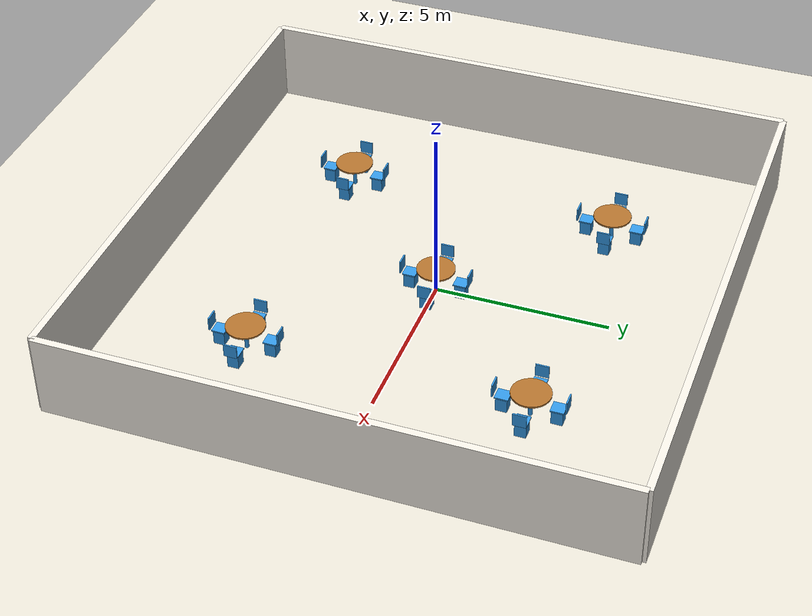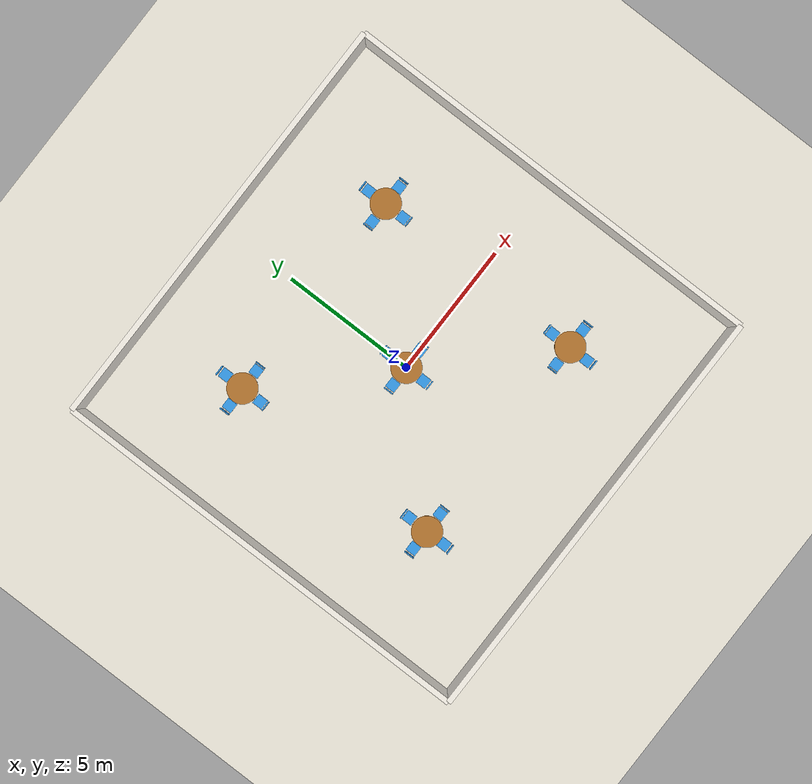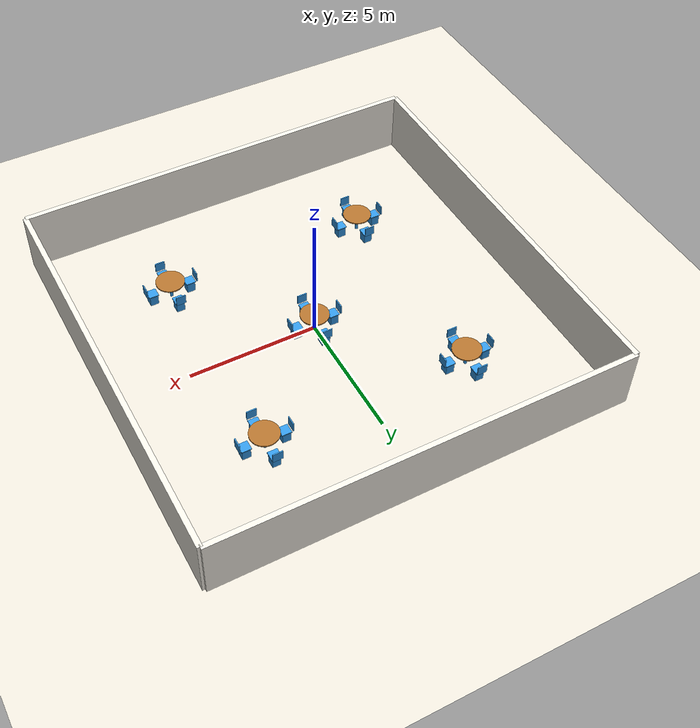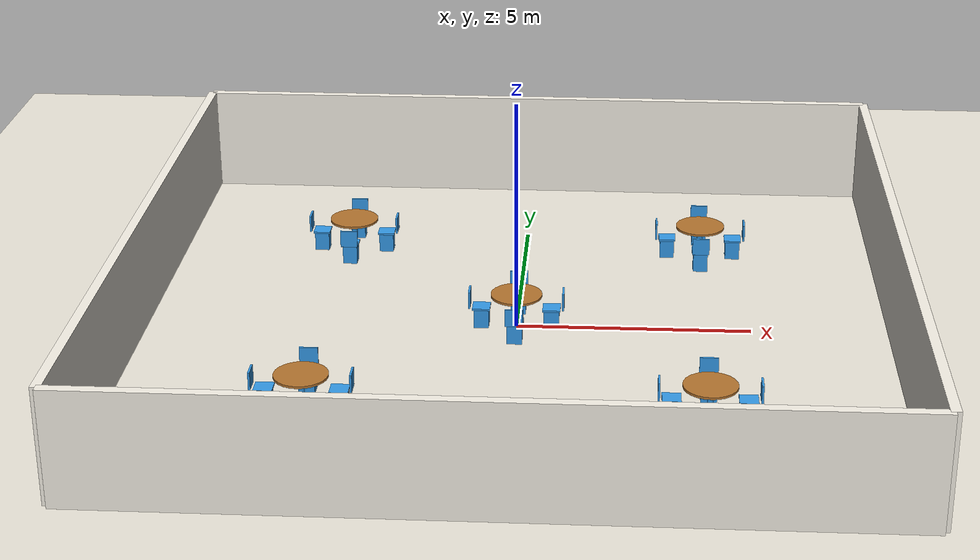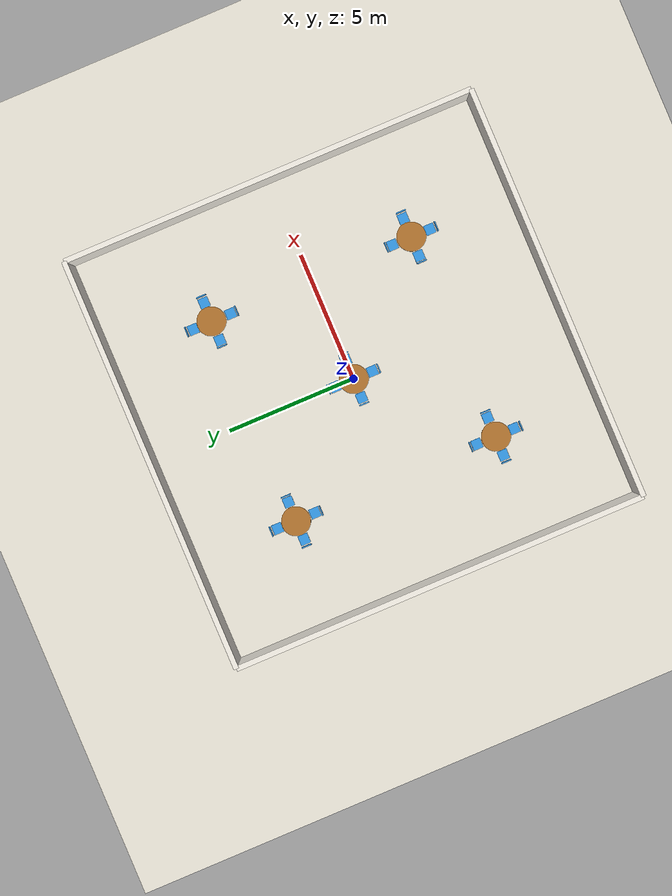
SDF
<sdf version="1.6">
 <world name="cafe">
  <physics name="1ms" type="ignored">
   <max_step_size>0.001</max_step_size>
   <real_time_factor>1.0</real_time_factor>
  </physics>
  <plugin filename="ignition-gazebo-physics-system" name="gz::sim::systems::Physics"/>
  <plugin filename="ignition-gazebo-user-commands-system" name="gz::sim::systems::UserCommands"/>
  <plugin filename="ignition-gazebo-scene-broadcaster-system" name="gz::sim::systems::SceneBroadcaster"/>
  <plugin filename="ignition-gazebo-sensors-system" name="gz::sim::systems::Sensors">
   <render_engine>ogre2</render_engine>
  </plugin>
  <plugin filename="ignition-gazebo-contact-system" name="gz::sim::systems::Contact"/>
  <light type="directional" name="sun">
   <pose>0 0 10 0 0 0</pose>
   <diffuse>1.0 1.0 1.0 1</diffuse>
   <specular>0.3 0.3 0.3 1</specular>
   <attenuation>
    <range>1000</range>
    <constant>0.9</constant>
    <linear>0.01</linear>
    <quadratic>0.001</quadratic>
   </attenuation>
   <direction>-0.5 0.1 -0.9</direction>
  </light>
  <model name="ground_plane">
   <static>true</static>
   <link name="link">
    <collision name="collision">
     <geometry><plane><normal>0 0 1</normal><size>100 100</size></plane></geometry>
    </collision>
    <visual name="visual">
     <geometry><plane><normal>0 0 1</normal><size>100 100</size></plane></geometry>
     <material><ambient>0.92 0.90 0.85 1</ambient><diffuse>0.92 0.90 0.85 1</diffuse></material>
    </visual>
   </link>
  </model>
  <model name="wall_north">
   <static>true</static>
   <pose>0 8 1.2 0 0 0</pose>
   <link name="link">
    <collision name="c"><geometry><box><size>16 0.2 2.4</size></box></geometry></collision>
    <visual name="v">
     <geometry><box><size>16 0.2 2.4</size></box></geometry>
     <material><ambient>0.96 0.94 0.90 1</ambient></material>
    </visual>
   </link>
  </model>
  <model name="wall_south">
   <static>true</static>
   <pose>0 -8 1.2 0 0 0</pose>
   <link name="link">
    <collision name="c"><geometry><box><size>16 0.2 2.4</size></box></geometry></collision>
    <visual name="v">
     <geometry><box><size>16 0.2 2.4</size></box></geometry>
     <material><ambient>0.96 0.94 0.90 1</ambient></material>
    </visual>
   </link>
  </model>
  <model name="wall_east">
   <static>true</static>
   <pose>8 0 1.2 0 0 0</pose>
   <link name="link">
    <collision name="c"><geometry><box><size>0.2 16 2.4</size></box></geometry></collision>
    <visual name="v">
     <geometry><box><size>0.2 16 2.4</size></box></geometry>
     <material><ambient>0.96 0.94 0.90 1</ambient></material>
    </visual>
   </link>
  </model>
  <model name="wall_west">
   <static>true</static>
   <pose>-8 0 1.2 0 0 0</pose>
   <link name="link">
    <collision name="c"><geometry><box><size>0.2 16 2.4</size></box></geometry></collision>
    <visual name="v">
     <geometry><box><size>0.2 16 2.4</size></box></geometry>
     <material><ambient>0.96 0.94 0.90 1</ambient></material>
    </visual>
   </link>
  </model>
  <model name="table_1_top">
   <static>true</static>
   <pose>4 4 0.73 0 0 0</pose>
   <link name="link">
    <collision name="c">
     <geometry><cylinder><radius>0.55</radius><length>0.05</length></cylinder></geometry>
    </collision>
    <visual name="v">
     <geometry><cylinder><radius>0.55</radius><length>0.05</length></cylinder></geometry>
     <material><ambient>0.70 0.45 0.18 1</ambient><diffuse>0.70 0.45 0.18 1</diffuse></material>
    </visual>
   </link>
  </model>
  <model name="table_1_leg">
   <static>true</static>
   <pose>4 4 0.36 0 0 0</pose>
   <link name="link">
    <collision name="c">
     <geometry><cylinder><radius>0.06</radius><length>0.72</length></cylinder></geometry>
    </collision>
    <visual name="v">
     <geometry><cylinder><radius>0.06</radius><length>0.72</length></cylinder></geometry>
     <material><ambient>0.20 0.60 0.90 1</ambient><diffuse>0.20 0.60 0.90 1</diffuse></material>
    </visual>
   </link>
  </model>
  <model name="chair_1_1_seat">
   <static>true</static>
   <pose>4 4.75 0.44 0 0 0</pose>
   <link name="link">
    <collision name="c"><geometry><box><size>0.38 0.38 0.04</size></box></geometry></collision>
    <visual name="v">
     <geometry><box><size>0.38 0.38 0.04</size></box></geometry>
     <material><ambient>0.20 0.60 0.90 1</ambient><diffuse>0.20 0.60 0.90 1</diffuse></material>
    </visual>
   </link>
  </model>
  <model name="chair_1_1_legs">
   <static>true</static>
   <pose>4 4.75 0.22 0 0 0</pose>
   <link name="link">
    <collision name="c"><geometry><box><size>0.32 0.32 0.44</size></box></geometry></collision>
    <visual name="v">
     <geometry><box><size>0.32 0.32 0.44</size></box></geometry>
     <material><ambient>0.20 0.60 0.90 1</ambient><diffuse>0.20 0.60 0.90 1</diffuse></material>
    </visual>
   </link>
  </model>
  <model name="chair_1_1_back">
   <static>true</static>
   <pose>4 5.0 0.65 0 0 0</pose>
   <link name="link">
    <collision name="c"><geometry><box><size>0.38 0.04 0.38</size></box></geometry></collision>
    <visual name="v">
     <geometry><box><size>0.38 0.04 0.38</size></box></geometry>
     <material><ambient>0.20 0.60 0.90 1</ambient><diffuse>0.20 0.60 0.90 1</diffuse></material>
    </visual>
   </link>
  </model>
  <model name="chair_1_2_seat">
   <static>true</static>
   <pose>4 3.25 0.44 0 0 0</pose>
   <link name="link">
    <collision name="c"><geometry><box><size>0.38 0.38 0.04</size></box></geometry></collision>
    <visual name="v">
     <geometry><box><size>0.38 0.38 0.04</size></box></geometry>
     <material><ambient>0.20 0.60 0.90 1</ambient><diffuse>0.20 0.60 0.90 1</diffuse></material>
    </visual>
   </link>
  </model>
  <model name="chair_1_2_legs">
   <static>true</static>
   <pose>4 3.25 0.22 0 0 0</pose>
   <link name="link">
    <collision name="c"><geometry><box><size>0.32 0.32 0.44</size></box></geometry></collision>
    <visual name="v">
     <geometry><box><size>0.32 0.32 0.44</size></box></geometry>
     <material><ambient>0.20 0.60 0.90 1</ambient><diffuse>0.20 0.60 0.90 1</diffuse></material>
    </visual>
   </link>
  </model>
  <model name="chair_1_2_back">
   <static>true</static>
   <pose>4 3.0 0.65 0 0 0</pose>
   <link name="link">
    <collision name="c"><geometry><box><size>0.38 0.04 0.38</size></box></geometry></collision>
    <visual name="v">
     <geometry><box><size>0.38 0.04 0.38</size></box></geometry>
     <material><ambient>0.20 0.60 0.90 1</ambient><diffuse>0.20 0.60 0.90 1</diffuse></material>
    </visual>
   </link>
  </model>
  <model name="chair_1_3_seat">
   <static>true</static>
   <pose>4.75 4 0.44 0 0 0</pose>
   <link name="link">
    <collision name="c"><geometry><box><size>0.38 0.38 0.04</size></box></geometry></collision>
    <visual name="v">
     <geometry><box><size>0.38 0.38 0.04</size></box></geometry>
     <material><ambient>0.20 0.60 0.90 1</ambient><diffuse>0.20 0.60 0.90 1</diffuse></material>
    </visual>
   </link>
  </model>
  <model name="chair_1_3_legs">
   <static>true</static>
   <pose>4.75 4 0.22 0 0 0</pose>
   <link name="link">
    <collision name="c"><geometry><box><size>0.32 0.32 0.44</size></box></geometry></collision>
    <visual name="v">
     <geometry><box><size>0.32 0.32 0.44</size></box></geometry>
     <material><ambient>0.20 0.60 0.90 1</ambient><diffuse>0.20 0.60 0.90 1</diffuse></material>
    </visual>
   </link>
  </model>
  <model name="chair_1_3_back">
   <static>true</static>
   <pose>5.0 4 0.65 0 0 0</pose>
   <link name="link">
    <collision name="c"><geometry><box><size>0.04 0.38 0.38</size></box></geometry></collision>
    <visual name="v">
     <geometry><box><size>0.04 0.38 0.38</size></box></geometry>
     <material><ambient>0.20 0.60 0.90 1</ambient><diffuse>0.20 0.60 0.90 1</diffuse></material>
    </visual>
   </link>
  </model>
  <model name="chair_1_4_seat">
   <static>true</static>
   <pose>3.25 4 0.44 0 0 0</pose>
   <link name="link">
    <collision name="c"><geometry><box><size>0.38 0.38 0.04</size></box></geometry></collision>
    <visual name="v">
     <geometry><box><size>0.38 0.38 0.04</size></box></geometry>
     <material><ambient>0.20 0.60 0.90 1</ambient><diffuse>0.20 0.60 0.90 1</diffuse></material>
    </visual>
   </link>
  </model>
  <model name="chair_1_4_legs">
   <static>true</static>
   <pose>3.25 4 0.22 0 0 0</pose>
   <link name="link">
    <collision name="c"><geometry><box><size>0.32 0.32 0.44</size></box></geometry></collision>
    <visual name="v">
     <geometry><box><size>0.32 0.32 0.44</size></box></geometry>
     <material><ambient>0.20 0.60 0.90 1</ambient><diffuse>0.20 0.60 0.90 1</diffuse></material>
    </visual>
   </link>
  </model>
  <model name="chair_1_4_back">
   <static>true</static>
   <pose>3.0 4 0.65 0 0 0</pose>
   <link name="link">
    <collision name="c"><geometry><box><size>0.04 0.38 0.38</size></box></geometry></collision>
    <visual name="v">
     <geometry><box><size>0.04 0.38 0.38</size></box></geometry>
     <material><ambient>0.20 0.60 0.90 1</ambient><diffuse>0.20 0.60 0.90 1</diffuse></material>
    </visual>
   </link>
  </model>
  <model name="table_2_top">
   <static>true</static>
   <pose>-4 4 0.73 0 0 0</pose>
   <link name="link">
    <collision name="c">
     <geometry><cylinder><radius>0.55</radius><length>0.05</length></cylinder></geometry>
    </collision>
    <visual name="v">
     <geometry><cylinder><radius>0.55</radius><length>0.05</length></cylinder></geometry>
     <material><ambient>0.70 0.45 0.18 1</ambient><diffuse>0.70 0.45 0.18 1</diffuse></material>
    </visual>
   </link>
  </model>
  <model name="table_2_leg">
   <static>true</static>
   <pose>-4 4 0.36 0 0 0</pose>
   <link name="link">
    <collision name="c">
     <geometry><cylinder><radius>0.06</radius><length>0.72</length></cylinder></geometry>
    </collision>
    <visual name="v">
     <geometry><cylinder><radius>0.06</radius><length>0.72</length></cylinder></geometry>
     <material><ambient>0.20 0.60 0.90 1</ambient><diffuse>0.20 0.60 0.90 1</diffuse></material>
    </visual>
   </link>
  </model>
  <model name="chair_2_1_seat">
   <static>true</static>
   <pose>-4 4.75 0.44 0 0 0</pose>
   <link name="link">
    <collision name="c"><geometry><box><size>0.38 0.38 0.04</size></box></geometry></collision>
    <visual name="v">
     <geometry><box><size>0.38 0.38 0.04</size></box></geometry>
     <material><ambient>0.20 0.60 0.90 1</ambient><diffuse>0.20 0.60 0.90 1</diffuse></material>
    </visual>
   </link>
  </model>
  <model name="chair_2_1_legs">
   <static>true</static>
   <pose>-4 4.75 0.22 0 0 0</pose>
   <link name="link">
    <collision name="c"><geometry><box><size>0.32 0.32 0.44</size></box></geometry></collision>
    <visual name="v">
     <geometry><box><size>0.32 0.32 0.44</size></box></geometry>
     <material><ambient>0.20 0.60 0.90 1</ambient><diffuse>0.20 0.60 0.90 1</diffuse></material>
    </visual>
   </link>
  </model>
  <model name="chair_2_1_back">
   <static>true</static>
   <pose>-4 5.0 0.65 0 0 0</pose>
   <link name="link">
    <collision name="c"><geometry><box><size>0.38 0.04 0.38</size></box></geometry></collision>
    <visual name="v">
     <geometry><box><size>0.38 0.04 0.38</size></box></geometry>
     <material><ambient>0.20 0.60 0.90 1</ambient><diffuse>0.20 0.60 0.90 1</diffuse></material>
    </visual>
   </link>
  </model>
  <model name="chair_2_2_seat">
   <static>true</static>
   <pose>-4 3.25 0.44 0 0 0</pose>
   <link name="link">
    <collision name="c"><geometry><box><size>0.38 0.38 0.04</size></box></geometry></collision>
    <visual name="v">
     <geometry><box><size>0.38 0.38 0.04</size></box></geometry>
     <material><ambient>0.20 0.60 0.90 1</ambient><diffuse>0.20 0.60 0.90 1</diffuse></material>
    </visual>
   </link>
  </model>
  <model name="chair_2_2_legs">
   <static>true</static>
   <pose>-4 3.25 0.22 0 0 0</pose>
   <link name="link">
    <collision name="c"><geometry><box><size>0.32 0.32 0.44</size></box></geometry></collision>
    <visual name="v">
     <geometry><box><size>0.32 0.32 0.44</size></box></geometry>
     <material><ambient>0.20 0.60 0.90 1</ambient><diffuse>0.20 0.60 0.90 1</diffuse></material>
    </visual>
   </link>
  </model>
  <model name="chair_2_2_back">
   <static>true</static>
   <pose>-4 3.0 0.65 0 0 0</pose>
   <link name="link">
    <collision name="c"><geometry><box><size>0.38 0.04 0.38</size></box></geometry></collision>
    <visual name="v">
     <geometry><box><size>0.38 0.04 0.38</size></box></geometry>
     <material><ambient>0.20 0.60 0.90 1</ambient><diffuse>0.20 0.60 0.90 1</diffuse></material>
    </visual>
   </link>
  </model>
  <model name="chair_2_3_seat">
   <static>true</static>
   <pose>-3.25 4 0.44 0 0 0</pose>
   <link name="link">
    <collision name="c"><geometry><box><size>0.38 0.38 0.04</size></box></geometry></collision>
    <visual name="v">
     <geometry><box><size>0.38 0.38 0.04</size></box></geometry>
     <material><ambient>0.20 0.60 0.90 1</ambient><diffuse>0.20 0.60 0.90 1</diffuse></material>
    </visual>
   </link>
  </model>
  <model name="chair_2_3_legs">
   <static>true</static>
   <pose>-3.25 4 0.22 0 0 0</pose>
   <link name="link">
    <collision name="c"><geometry><box><size>0.32 0.32 0.44</size></box></geometry></collision>
    <visual name="v">
     <geometry><box><size>0.32 0.32 0.44</size></box></geometry>
     <material><ambient>0.20 0.60 0.90 1</ambient><diffuse>0.20 0.60 0.90 1</diffuse></material>
    </visual>
   </link>
  </model>
  <model name="chair_2_3_back">
   <static>true</static>
   <pose>-3.0 4 0.65 0 0 0</pose>
   <link name="link">
    <collision name="c"><geometry><box><size>0.04 0.38 0.38</size></box></geometry></collision>
    <visual name="v">
     <geometry><box><size>0.04 0.38 0.38</size></box></geometry>
     <material><ambient>0.20 0.60 0.90 1</ambient><diffuse>0.20 0.60 0.90 1</diffuse></material>
    </visual>
   </link>
  </model>
  <model name="chair_2_4_seat">
   <static>true</static>
   <pose>-4.75 4 0.44 0 0 0</pose>
   <link name="link">
    <collision name="c"><geometry><box><size>0.38 0.38 0.04</size></box></geometry></collision>
    <visual name="v">
     <geometry><box><size>0.38 0.38 0.04</size></box></geometry>
     <material><ambient>0.20 0.60 0.90 1</ambient><diffuse>0.20 0.60 0.90 1</diffuse></material>
    </visual>
   </link>
  </model>
  <model name="chair_2_4_legs">
   <static>true</static>
   <pose>-4.75 4 0.22 0 0 0</pose>
   <link name="link">
    <collision name="c"><geometry><box><size>0.32 0.32 0.44</size></box></geometry></collision>
    <visual name="v">
     <geometry><box><size>0.32 0.32 0.44</size></box></geometry>
     <material><ambient>0.20 0.60 0.90 1</ambient><diffuse>0.20 0.60 0.90 1</diffuse></material>
    </visual>
   </link>
  </model>
  <model name="chair_2_4_back">
   <static>true</static>
   <pose>-5.0 4 0.65 0 0 0</pose>
   <link name="link">
    <collision name="c"><geometry><box><size>0.04 0.38 0.38</size></box></geometry></collision>
    <visual name="v">
     <geometry><box><size>0.04 0.38 0.38</size></box></geometry>
     <material><ambient>0.20 0.60 0.90 1</ambient><diffuse>0.20 0.60 0.90 1</diffuse></material>
    </visual>
   </link>
  </model>
  <model name="table_3_top">
   <static>true</static>
   <pose>4 -4 0.73 0 0 0</pose>
   <link name="link">
    <collision name="c">
     <geometry><cylinder><radius>0.55</radius><length>0.05</length></cylinder></geometry>
    </collision>
    <visual name="v">
     <geometry><cylinder><radius>0.55</radius><length>0.05</length></cylinder></geometry>
     <material><ambient>0.70 0.45 0.18 1</ambient><diffuse>0.70 0.45 0.18 1</diffuse></material>
    </visual>
   </link>
  </model>
  <model name="table_3_leg">
   <static>true</static>
   <pose>4 -4 0.36 0 0 0</pose>
   <link name="link">
    <collision name="c">
     <geometry><cylinder><radius>0.06</radius><length>0.72</length></cylinder></geometry>
    </collision>
    <visual name="v">
     <geometry><cylinder><radius>0.06</radius><length>0.72</length></cylinder></geometry>
     <material><ambient>0.20 0.60 0.90 1</ambient><diffuse>0.20 0.60 0.90 1</diffuse></material>
    </visual>
   </link>
  </model>
  <model name="chair_3_1_seat">
   <static>true</static>
   <pose>4 -3.25 0.44 0 0 0</pose>
   <link name="link">
    <collision name="c"><geometry><box><size>0.38 0.38 0.04</size></box></geometry></collision>
    <visual name="v">
     <geometry><box><size>0.38 0.38 0.04</size></box></geometry>
     <material><ambient>0.20 0.60 0.90 1</ambient><diffuse>0.20 0.60 0.90 1</diffuse></material>
    </visual>
   </link>
  </model>
  <model name="chair_3_1_legs">
   <static>true</static>
   <pose>4 -3.25 0.22 0 0 0</pose>
   <link name="link">
    <collision name="c"><geometry><box><size>0.32 0.32 0.44</size></box></geometry></collision>
    <visual name="v">
     <geometry><box><size>0.32 0.32 0.44</size></box></geometry>
     <material><ambient>0.20 0.60 0.90 1</ambient><diffuse>0.20 0.60 0.90 1</diffuse></material>
    </visual>
   </link>
  </model>
  <model name="chair_3_1_back">
   <static>true</static>
   <pose>4 -3.0 0.65 0 0 0</pose>
   <link name="link">
    <collision name="c"><geometry><box><size>0.38 0.04 0.38</size></box></geometry></collision>
    <visual name="v">
     <geometry><box><size>0.38 0.04 0.38</size></box></geometry>
     <material><ambient>0.20 0.60 0.90 1</ambient><diffuse>0.20 0.60 0.90 1</diffuse></material>
    </visual>
   </link>
  </model>
  <model name="chair_3_2_seat">
   <static>true</static>
   <pose>4 -4.75 0.44 0 0 0</pose>
   <link name="link">
    <collision name="c"><geometry><box><size>0.38 0.38 0.04</size></box></geometry></collision>
    <visual name="v">
     <geometry><box><size>0.38 0.38 0.04</size></box></geometry>
     <material><ambient>0.20 0.60 0.90 1</ambient><diffuse>0.20 0.60 0.90 1</diffuse></material>
    </visual>
   </link>
  </model>
  <model name="chair_3_2_legs">
   <static>true</static>
   <pose>4 -4.75 0.22 0 0 0</pose>
   <link name="link">
    <collision name="c"><geometry><box><size>0.32 0.32 0.44</size></box></geometry></collision>
    <visual name="v">
     <geometry><box><size>0.32 0.32 0.44</size></box></geometry>
     <material><ambient>0.20 0.60 0.90 1</ambient><diffuse>0.20 0.60 0.90 1</diffuse></material>
    </visual>
   </link>
  </model>
  <model name="chair_3_2_back">
   <static>true</static>
   <pose>4 -5.0 0.65 0 0 0</pose>
   <link name="link">
    <collision name="c"><geometry><box><size>0.38 0.04 0.38</size></box></geometry></collision>
    <visual name="v">
     <geometry><box><size>0.38 0.04 0.38</size></box></geometry>
     <material><ambient>0.20 0.60 0.90 1</ambient><diffuse>0.20 0.60 0.90 1</diffuse></material>
    </visual>
   </link>
  </model>
  <model name="chair_3_3_seat">
   <static>true</static>
   <pose>4.75 -4 0.44 0 0 0</pose>
   <link name="link">
    <collision name="c"><geometry><box><size>0.38 0.38 0.04</size></box></geometry></collision>
    <visual name="v">
     <geometry><box><size>0.38 0.38 0.04</size></box></geometry>
     <material><ambient>0.20 0.60 0.90 1</ambient><diffuse>0.20 0.60 0.90 1</diffuse></material>
    </visual>
   </link>
  </model>
  <model name="chair_3_3_legs">
   <static>true</static>
   <pose>4.75 -4 0.22 0 0 0</pose>
   <link name="link">
    <collision name="c"><geometry><box><size>0.32 0.32 0.44</size></box></geometry></collision>
    <visual name="v">
     <geometry><box><size>0.32 0.32 0.44</size></box></geometry>
     <material><ambient>0.20 0.60 0.90 1</ambient><diffuse>0.20 0.60 0.90 1</diffuse></material>
    </visual>
   </link>
  </model>
  <model name="chair_3_3_back">
   <static>true</static>
   <pose>5.0 -4 0.65 0 0 0</pose>
   <link name="link">
    <collision name="c"><geometry><box><size>0.04 0.38 0.38</size></box></geometry></collision>
    <visual name="v">
     <geometry><box><size>0.04 0.38 0.38</size></box></geometry>
     <material><ambient>0.20 0.60 0.90 1</ambient><diffuse>0.20 0.60 0.90 1</diffuse></material>
    </visual>
   </link>
  </model>
  <model name="chair_3_4_seat">
   <static>true</static>
   <pose>3.25 -4 0.44 0 0 0</pose>
   <link name="link">
    <collision name="c"><geometry><box><size>0.38 0.38 0.04</size></box></geometry></collision>
    <visual name="v">
     <geometry><box><size>0.38 0.38 0.04</size></box></geometry>
     <material><ambient>0.20 0.60 0.90 1</ambient><diffuse>0.20 0.60 0.90 1</diffuse></material>
    </visual>
   </link>
  </model>
  <model name="chair_3_4_legs">
   <static>true</static>
   <pose>3.25 -4 0.22 0 0 0</pose>
   <link name="link">
    <collision name="c"><geometry><box><size>0.32 0.32 0.44</size></box></geometry></collision>
    <visual name="v">
     <geometry><box><size>0.32 0.32 0.44</size></box></geometry>
     <material><ambient>0.20 0.60 0.90 1</ambient><diffuse>0.20 0.60 0.90 1</diffuse></material>
    </visual>
   </link>
  </model>
  <model name="chair_3_4_back">
   <static>true</static>
   <pose>3.0 -4 0.65 0 0 0</pose>
   <link name="link">
    <collision name="c"><geometry><box><size>0.04 0.38 0.38</size></box></geometry></collision>
    <visual name="v">
     <geometry><box><size>0.04 0.38 0.38</size></box></geometry>
     <material><ambient>0.20 0.60 0.90 1</ambient><diffuse>0.20 0.60 0.90 1</diffuse></material>
    </visual>
   </link>
  </model>
  <model name="table_4_top">
   <static>true</static>
   <pose>-4 -4 0.73 0 0 0</pose>
   <link name="link">
    <collision name="c">
     <geometry><cylinder><radius>0.55</radius><length>0.05</length></cylinder></geometry>
    </collision>
    <visual name="v">
     <geometry><cylinder><radius>0.55</radius><length>0.05</length></cylinder></geometry>
     <material><ambient>0.70 0.45 0.18 1</ambient><diffuse>0.70 0.45 0.18 1</diffuse></material>
    </visual>
   </link>
  </model>
  <model name="table_4_leg">
   <static>true</static>
   <pose>-4 -4 0.36 0 0 0</pose>
   <link name="link">
    <collision name="c">
     <geometry><cylinder><radius>0.06</radius><length>0.72</length></cylinder></geometry>
    </collision>
    <visual name="v">
     <geometry><cylinder><radius>0.06</radius><length>0.72</length></cylinder></geometry>
     <material><ambient>0.20 0.60 0.90 1</ambient><diffuse>0.20 0.60 0.90 1</diffuse></material>
    </visual>
   </link>
  </model>
  <model name="chair_4_1_seat">
   <static>true</static>
   <pose>-4 -3.25 0.44 0 0 0</pose>
   <link name="link">
    <collision name="c"><geometry><box><size>0.38 0.38 0.04</size></box></geometry></collision>
    <visual name="v">
     <geometry><box><size>0.38 0.38 0.04</size></box></geometry>
     <material><ambient>0.20 0.60 0.90 1</ambient><diffuse>0.20 0.60 0.90 1</diffuse></material>
    </visual>
   </link>
  </model>
  <model name="chair_4_1_legs">
   <static>true</static>
   <pose>-4 -3.25 0.22 0 0 0</pose>
   <link name="link">
    <collision name="c"><geometry><box><size>0.32 0.32 0.44</size></box></geometry></collision>
    <visual name="v">
     <geometry><box><size>0.32 0.32 0.44</size></box></geometry>
     <material><ambient>0.20 0.60 0.90 1</ambient><diffuse>0.20 0.60 0.90 1</diffuse></material>
    </visual>
   </link>
  </model>
  <model name="chair_4_1_back">
   <static>true</static>
   <pose>-4 -3.0 0.65 0 0 0</pose>
   <link name="link">
    <collision name="c"><geometry><box><size>0.38 0.04 0.38</size></box></geometry></collision>
    <visual name="v">
     <geometry><box><size>0.38 0.04 0.38</size></box></geometry>
     <material><ambient>0.20 0.60 0.90 1</ambient><diffuse>0.20 0.60 0.90 1</diffuse></material>
    </visual>
   </link>
  </model>
  <model name="chair_4_2_seat">
   <static>true</static>
   <pose>-4 -4.75 0.44 0 0 0</pose>
   <link name="link">
    <collision name="c"><geometry><box><size>0.38 0.38 0.04</size></box></geometry></collision>
    <visual name="v">
     <geometry><box><size>0.38 0.38 0.04</size></box></geometry>
     <material><ambient>0.20 0.60 0.90 1</ambient><diffuse>0.20 0.60 0.90 1</diffuse></material>
    </visual>
   </link>
  </model>
  <model name="chair_4_2_legs">
   <static>true</static>
   <pose>-4 -4.75 0.22 0 0 0</pose>
   <link name="link">
    <collision name="c"><geometry><box><size>0.32 0.32 0.44</size></box></geometry></collision>
    <visual name="v">
     <geometry><box><size>0.32 0.32 0.44</size></box></geometry>
     <material><ambient>0.20 0.60 0.90 1</ambient><diffuse>0.20 0.60 0.90 1</diffuse></material>
    </visual>
   </link>
  </model>
  <model name="chair_4_2_back">
   <static>true</static>
   <pose>-4 -5.0 0.65 0 0 0</pose>
   <link name="link">
    <collision name="c"><geometry><box><size>0.38 0.04 0.38</size></box></geometry></collision>
    <visual name="v">
     <geometry><box><size>0.38 0.04 0.38</size></box></geometry>
     <material><ambient>0.20 0.60 0.90 1</ambient><diffuse>0.20 0.60 0.90 1</diffuse></material>
    </visual>
   </link>
  </model>
  <model name="chair_4_3_seat">
   <static>true</static>
   <pose>-3.25 -4 0.44 0 0 0</pose>
   <link name="link">
    <collision name="c"><geometry><box><size>0.38 0.38 0.04</size></box></geometry></collision>
    <visual name="v">
     <geometry><box><size>0.38 0.38 0.04</size></box></geometry>
     <material><ambient>0.20 0.60 0.90 1</ambient><diffuse>0.20 0.60 0.90 1</diffuse></material>
    </visual>
   </link>
  </model>
  <model name="chair_4_3_legs">
   <static>true</static>
   <pose>-3.25 -4 0.22 0 0 0</pose>
   <link name="link">
    <collision name="c"><geometry><box><size>0.32 0.32 0.44</size></box></geometry></collision>
    <visual name="v">
     <geometry><box><size>0.32 0.32 0.44</size></box></geometry>
     <material><ambient>0.20 0.60 0.90 1</ambient><diffuse>0.20 0.60 0.90 1</diffuse></material>
    </visual>
   </link>
  </model>
  <model name="chair_4_3_back">
   <static>true</static>
   <pose>-3.0 -4 0.65 0 0 0</pose>
   <link name="link">
    <collision name="c"><geometry><box><size>0.04 0.38 0.38</size></box></geometry></collision>
    <visual name="v">
     <geometry><box><size>0.04 0.38 0.38</size></box></geometry>
     <material><ambient>0.20 0.60 0.90 1</ambient><diffuse>0.20 0.60 0.90 1</diffuse></material>
    </visual>
   </link>
  </model>
  <model name="chair_4_4_seat">
   <static>true</static>
   <pose>-4.75 -4 0.44 0 0 0</pose>
   <link name="link">
    <collision name="c"><geometry><box><size>0.38 0.38 0.04</size></box></geometry></collision>
    <visual name="v">
     <geometry><box><size>0.38 0.38 0.04</size></box></geometry>
     <material><ambient>0.20 0.60 0.90 1</ambient><diffuse>0.20 0.60 0.90 1</diffuse></material>
    </visual>
   </link>
  </model>
  <model name="chair_4_4_legs">
   <static>true</static>
   <pose>-4.75 -4 0.22 0 0 0</pose>
   <link name="link">
    <collision name="c"><geometry><box><size>0.32 0.32 0.44</size></box></geometry></collision>
    <visual name="v">
     <geometry><box><size>0.32 0.32 0.44</size></box></geometry>
     <material><ambient>0.20 0.60 0.90 1</ambient><diffuse>0.20 0.60 0.90 1</diffuse></material>
    </visual>
   </link>
  </model>
  <model name="chair_4_4_back">
   <static>true</static>
   <pose>-5.0 -4 0.65 0 0 0</pose>
   <link name="link">
    <collision name="c"><geometry><box><size>0.04 0.38 0.38</size></box></geometry></collision>
    <visual name="v">
     <geometry><box><size>0.04 0.38 0.38</size></box></geometry>
     <material><ambient>0.20 0.60 0.90 1</ambient><diffuse>0.20 0.60 0.90 1</diffuse></material>
    </visual>
   </link>
  </model>
  <model name="table_5_top">
   <static>true</static>
   <pose>0 0 0.73 0 0 0</pose>
   <link name="link">
    <collision name="c">
     <geometry><cylinder><radius>0.55</radius><length>0.05</length></cylinder></geometry>
    </collision>
    <visual name="v">
     <geometry><cylinder><radius>0.55</radius><length>0.05</length></cylinder></geometry>
     <material><ambient>0.70 0.45 0.18 1</ambient><diffuse>0.70 0.45 0.18 1</diffuse></material>
    </visual>
   </link>
  </model>
  <model name="table_5_leg">
   <static>true</static>
   <pose>0 0 0.36 0 0 0</pose>
   <link name="link">
    <collision name="c">
     <geometry><cylinder><radius>0.06</radius><length>0.72</length></cylinder></geometry>
    </collision>
    <visual name="v">
     <geometry><cylinder><radius>0.06</radius><length>0.72</length></cylinder></geometry>
     <material><ambient>0.20 0.60 0.90 1</ambient><diffuse>0.20 0.60 0.90 1</diffuse></material>
    </visual>
   </link>
  </model>
  <model name="chair_5_1_seat">
   <static>true</static>
   <pose>0 0.75 0.44 0 0 0</pose>
   <link name="link">
    <collision name="c"><geometry><box><size>0.38 0.38 0.04</size></box></geometry></collision>
    <visual name="v">
     <geometry><box><size>0.38 0.38 0.04</size></box></geometry>
     <material><ambient>0.20 0.60 0.90 1</ambient><diffuse>0.20 0.60 0.90 1</diffuse></material>
    </visual>
   </link>
  </model>
  <model name="chair_5_1_legs">
   <static>true</static>
   <pose>0 0.75 0.22 0 0 0</pose>
   <link name="link">
    <collision name="c"><geometry><box><size>0.32 0.32 0.44</size></box></geometry></collision>
    <visual name="v">
     <geometry><box><size>0.32 0.32 0.44</size></box></geometry>
     <material><ambient>0.20 0.60 0.90 1</ambient><diffuse>0.20 0.60 0.90 1</diffuse></material>
    </visual>
   </link>
  </model>
  <model name="chair_5_1_back">
   <static>true</static>
   <pose>0 1.0 0.65 0 0 0</pose>
   <link name="link">
    <collision name="c"><geometry><box><size>0.38 0.04 0.38</size></box></geometry></collision>
    <visual name="v">
     <geometry><box><size>0.38 0.04 0.38</size></box></geometry>
     <material><ambient>0.20 0.60 0.90 1</ambient><diffuse>0.20 0.60 0.90 1</diffuse></material>
    </visual>
   </link>
  </model>
  <model name="chair_5_2_seat">
   <static>true</static>
   <pose>0 -0.75 0.44 0 0 0</pose>
   <link name="link">
    <collision name="c"><geometry><box><size>0.38 0.38 0.04</size></box></geometry></collision>
    <visual name="v">
     <geometry><box><size>0.38 0.38 0.04</size></box></geometry>
     <material><ambient>0.20 0.60 0.90 1</ambient><diffuse>0.20 0.60 0.90 1</diffuse></material>
    </visual>
   </link>
  </model>
  <model name="chair_5_2_legs">
   <static>true</static>
   <pose>0 -0.75 0.22 0 0 0</pose>
   <link name="link">
    <collision name="c"><geometry><box><size>0.32 0.32 0.44</size></box></geometry></collision>
    <visual name="v">
     <geometry><box><size>0.32 0.32 0.44</size></box></geometry>
     <material><ambient>0.20 0.60 0.90 1</ambient><diffuse>0.20 0.60 0.90 1</diffuse></material>
    </visual>
   </link>
  </model>
  <model name="chair_5_2_back">
   <static>true</static>
   <pose>0 -1.0 0.65 0 0 0</pose>
   <link name="link">
    <collision name="c"><geometry><box><size>0.38 0.04 0.38</size></box></geometry></collision>
    <visual name="v">
     <geometry><box><size>0.38 0.04 0.38</size></box></geometry>
     <material><ambient>0.20 0.60 0.90 1</ambient><diffuse>0.20 0.60 0.90 1</diffuse></material>
    </visual>
   </link>
  </model>
  <model name="chair_5_3_seat">
   <static>true</static>
   <pose>0.75 0 0.44 0 0 0</pose>
   <link name="link">
    <collision name="c"><geometry><box><size>0.38 0.38 0.04</size></box></geometry></collision>
    <visual name="v">
     <geometry><box><size>0.38 0.38 0.04</size></box></geometry>
     <material><ambient>0.20 0.60 0.90 1</ambient><diffuse>0.20 0.60 0.90 1</diffuse></material>
    </visual>
   </link>
  </model>
  <model name="chair_5_3_legs">
   <static>true</static>
   <pose>0.75 0 0.22 0 0 0</pose>
   <link name="link">
    <collision name="c"><geometry><box><size>0.32 0.32 0.44</size></box></geometry></collision>
    <visual name="v">
     <geometry><box><size>0.32 0.32 0.44</size></box></geometry>
     <material><ambient>0.20 0.60 0.90 1</ambient><diffuse>0.20 0.60 0.90 1</diffuse></material>
    </visual>
   </link>
  </model>
  <model name="chair_5_3_back">
   <static>true</static>
   <pose>1.0 0 0.65 0 0 0</pose>
   <link name="link">
    <collision name="c"><geometry><box><size>0.04 0.38 0.38</size></box></geometry></collision>
    <visual name="v">
     <geometry><box><size>0.04 0.38 0.38</size></box></geometry>
     <material><ambient>0.20 0.60 0.90 1</ambient><diffuse>0.20 0.60 0.90 1</diffuse></material>
    </visual>
   </link>
  </model>
  <model name="chair_5_4_seat">
   <static>true</static>
   <pose>-0.75 0 0.44 0 0 0</pose>
   <link name="link">
    <collision name="c"><geometry><box><size>0.38 0.38 0.04</size></box></geometry></collision>
    <visual name="v">
     <geometry><box><size>0.38 0.38 0.04</size></box></geometry>
     <material><ambient>0.20 0.60 0.90 1</ambient><diffuse>0.20 0.60 0.90 1</diffuse></material>
    </visual>
   </link>
  </model>
  <model name="chair_5_4_legs">
   <static>true</static>
   <pose>-0.75 0 0.22 0 0 0</pose>
   <link name="link">
    <collision name="c"><geometry><box><size>0.32 0.32 0.44</size></box></geometry></collision>
    <visual name="v">
     <geometry><box><size>0.32 0.32 0.44</size></box></geometry>
     <material><ambient>0.20 0.60 0.90 1</ambient><diffuse>0.20 0.60 0.90 1</diffuse></material>
    </visual>
   </link>
  </model>
  <model name="chair_5_4_back">
   <static>true</static>
   <pose>-1.0 0 0.65 0 0 0</pose>
   <link name="link">
    <collision name="c"><geometry><box><size>0.04 0.38 0.38</size></box></geometry></collision>
    <visual name="v">
     <geometry><box><size>0.04 0.38 0.38</size></box></geometry>
     <material><ambient>0.20 0.60 0.90 1</ambient><diffuse>0.20 0.60 0.90 1</diffuse></material>
    </visual>
   </link>
  </model>
 </world>
</sdf>
